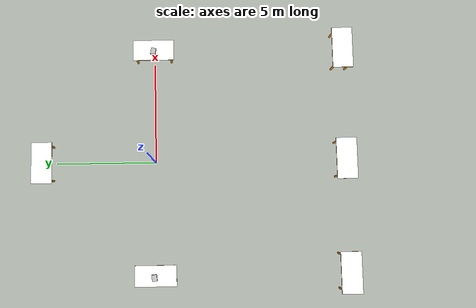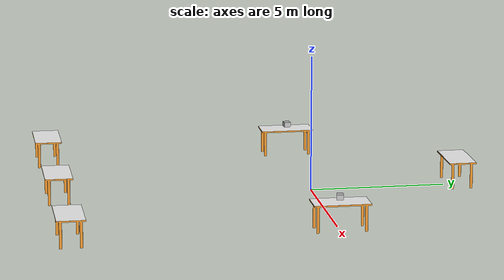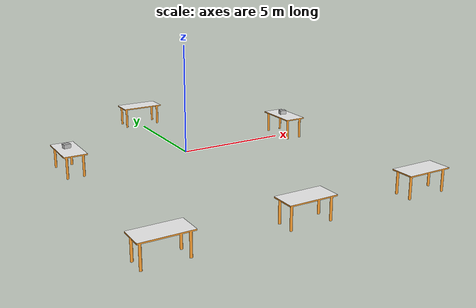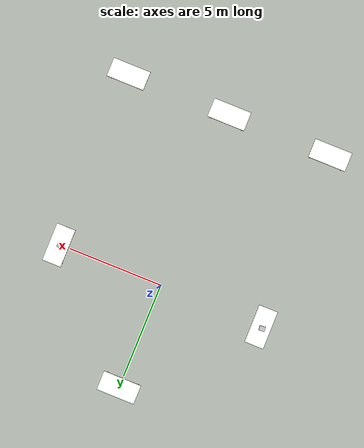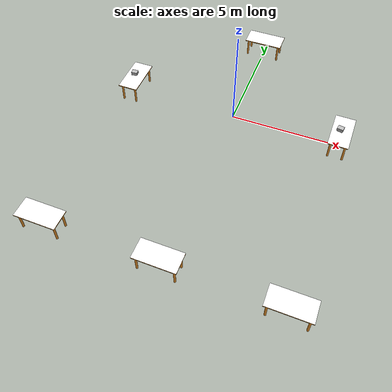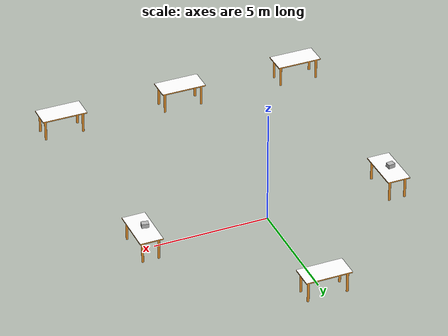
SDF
<sdf version="1.9">
 <world name="agentic_ai_demo">
  <physics type="ode"><max_step_size>0.02</max_step_size><real_time_factor>1.0</real_time_factor></physics>
  <plugin name="gz::sim::systems::Physics" filename="libgz-sim-physics-system.so"/>
  <plugin name="gz::sim::systems::UserCommands" filename="libgz-sim-user-commands-system.so"/>
  <plugin name="gz::sim::systems::SceneBroadcaster" filename="libgz-sim-scene-broadcaster-system.so"/>
  <plugin name="gz::sim::systems::Sensors" filename="libgz-sim-sensors-system.so">
   <render_engine>ogre2</render_engine>
  </plugin>
  <plugin name="gz::sim::systems::Imu" filename="libgz-sim-imu-system.so"/>
  <plugin name="gz::sim::systems::NavSat" filename="libgz-sim-navsat-system.so"/>
  <plugin name="gz::sim::systems::Contact" filename="libgz-sim-contact-system.so"/>
  <scene><ambient>1 1 1</ambient><grid>false</grid></scene>
  <light name="sun" type="directional">
   <pose>0 0 10 0 0 0</pose>
   <diffuse>0.8 0.8 0.8 1</diffuse>
   <specular>0.8 0.8 0.8 1</specular>
   <direction>0 0 -1</direction>
  </light>
  <include><uri>model://work_table</uri><name>work_table_top</name><pose>0 5.5 0 0 0 0</pose></include>
  <include><uri>model://work_table</uri><name>work_table_left</name><pose>-5.5 0 0 0 0 1.5708</pose></include>
  <include>
   <uri>model://Cardboard box 40</uri>
   <name>work_table_left_medium_box</name>
   <pose>-5.56 0.05 1.196916 0 0 0.12</pose>
  </include>
  <include><uri>model://work_table</uri><name>work_table_right</name><pose>5.5 0 0 0 0 -1.5708</pose></include>
  <include>
   <uri>model://Cardboard box 40</uri>
   <name>work_table_right_medium_box</name>
   <pose>5.40 0.00 1.196916 0 0 -0.18</pose>
  </include>
  <include><uri>model://work_table</uri><name>work_table_bottom</name><pose>0 -9.35 0 0 0 0</pose></include>
  <include>
   <uri>model://work_table</uri>
   <name>work_table_bottom_left_corner</name>
   <pose>-5.50 -9.35 0 0 0 0</pose>
  </include>
  <include>
   <uri>model://work_table</uri>
   <name>work_table_bottom_right_corner</name>
   <pose>5.50 -9.35 0 0 0 0</pose>
  </include>
 </world>
</sdf>

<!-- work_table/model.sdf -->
<sdf version="1.9">
  <model name="work_table">
    <static>true</static>
    <link name="link">
      <visual name="visual">
        <pose>0 0 1.0 0 0 0</pose>
        <geometry>
          <mesh>
            <uri>model://floor/meshes/mesa.stl</uri>
          </mesh>
        </geometry>
        <material>
          <ambient>0.909804 0.572549 0.164706 1</ambient>
          <diffuse>0.909804 0.572549 0.164706 1</diffuse>
        </material>
      </visual>
      <visual name="wood_top_visual">
        <pose>0 0 1.051 0 0 0</pose>
        <geometry>
          <box>
            <size>2.0 1.0 0.003</size>
          </box>
        </geometry>
        <material>
          <diffuse>1 1 1 1</diffuse>
          <specular>0.08 0.08 0.08 1</specular>
          <pbr>
            <metal>
              <albedo_map>model://work_table/materials/textures/wood_table_001_diff_1k.jpg</albedo_map>
              <metalness>0.0</metalness>
              <roughness>0.65</roughness>
            </metal>
          </pbr>
        </material>
      </visual>
      <collision name="collision">
        <pose>0 0 1.0 0 0 0</pose>
        <geometry>
          <mesh>
            <uri>model://floor/meshes/mesa.stl</uri>
          </mesh>
        </geometry>
      </collision>
    </link>
  </model>
</sdf>

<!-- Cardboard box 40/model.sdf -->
<sdf version="1.6">
  <model name="cardboard_box_40">
    <pose>0 0 0.09 0 0 0</pose>
    <link name="link">
      <inertial>
        <mass>2</mass>
        <inertia>
          <ixx>0.041666667</ixx>
          <ixy>0</ixy>
          <ixz>0</ixz>
          <iyy>0.056666667</iyy>
          <iyz>0</iyz>
          <izz>0.068333333</izz>
        </inertia>
      </inertial>
      <collision name="collision">
        <geometry>
          <box>
            <size>0.3 0.24 0.18</size>
          </box>
        </geometry>
        <surface>
          <friction>
            <ode>
              <mu>1.0</mu>
              <mu2>1.0</mu2>
            </ode>
          </friction>
          <contact>
            <ode>
              <kp>10000000.0</kp>
              <kd>1.0</kd>
              <min_depth>0.001</min_depth>
              <max_vel>0.1</max_vel>
            </ode>
          </contact>
        </surface>
      </collision>
      <visual name="visual">
        <pose>0 0 -0.09 0 0 0</pose>
        <geometry>
          <mesh>
            <uri>meshes/cardboard_box.dae</uri>
            <scale>0.755591376 0.6044731008 0.4533548256</scale>
          </mesh>
        </geometry>
      </visual>
    </link>
  </model>
</sdf>
